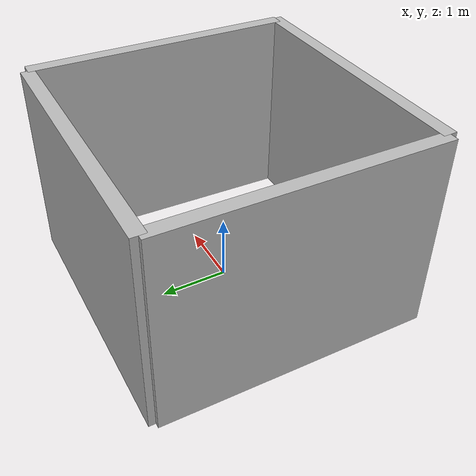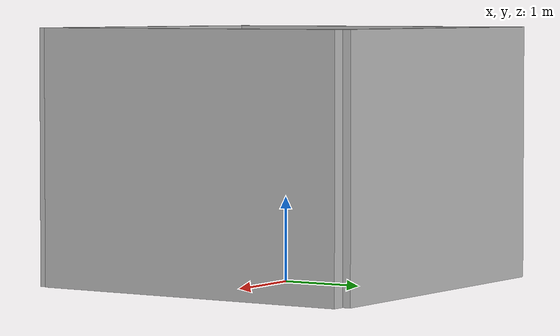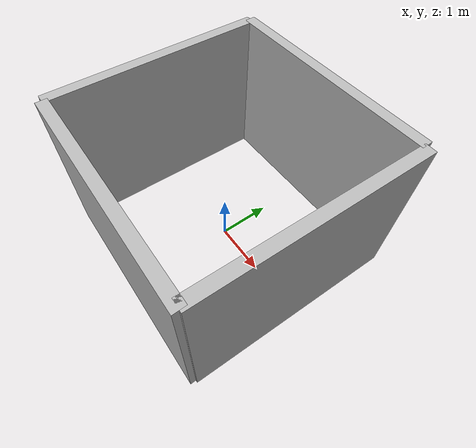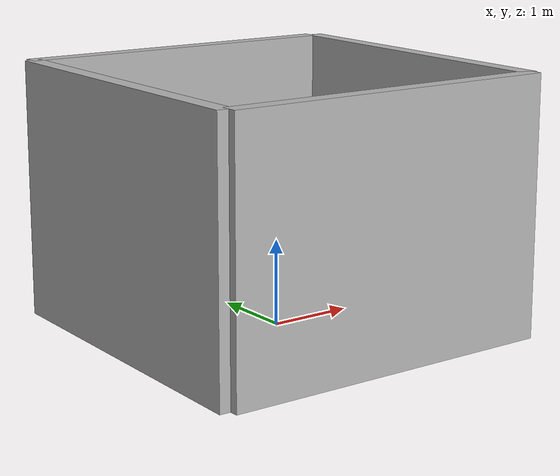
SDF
<?xml version="1.0" ?>
<sdf version="1.5">
  <model name="brick_box_3x1x3">
    <static>true</static>
    <link name=" Wall1">
      <pose>0 -2 1.5 0 0 0</pose>
      <collision name="collision">
        <geometry>
          <box>
            <size>4.0 0.2 3.0</size>
          </box>
        </geometry>
      </collision>
      <visual name="visual">
        <geometry>
          <mesh>
           <uri>model://my_Wall/meshes/simple_box.dae</uri>
            <scale>4.0 0.2 3.0</scale>
          </mesh>
        </geometry>
        <material>
          <script>
            <uri>model://my_Wall/materials/scripts</uri>
            <uri>model://my_Wall/materials/textures</uri>
            <name>BrickBox/Diffuse</name>
          </script>
        </material>
      </visual>
    </link>

<link name="Wall2">
      <pose>0 2 1.5 0 0 0</pose>
      <collision name="collision">
        <geometry>
          <box>
            <size>4.0 0.2 3.0</size>
          </box>
        </geometry>
      </collision>
      <visual name="visual">
        <geometry>
          <mesh>
           <uri>model://my_Wall/meshes/simple_box.dae</uri>
            <scale>4.0 0.2 3.0</scale>
          </mesh>
        </geometry>
        <material>
          <script>
            <uri>model://my_Wall/materials/scripts</uri>
            <uri>model://my_Wall/materials/textures</uri>
            <name>BrickBox/Diffuse</name>
          </script>
        </material>
      </visual>
    </link>

<link name="Wall3">
      <pose>-2 0 1.5 0 0 1.5565</pose>
      <collision name="collision">
        <geometry>
          <box>
            <size>4.0 0.2 3.0</size>
          </box>
        </geometry>
      </collision>
      <visual name="visual">
        <geometry>
          <mesh>
           <uri>model://my_Wall/meshes/simple_box.dae</uri>
            <scale>4.0 0.2 3.0</scale>
          </mesh>
        </geometry>
        <material>
          <script>
            <uri>model://my_Wall/materials/scripts</uri>
            <uri>model://my_Wall/materials/textures</uri>
            <name>BrickBox/Diffuse</name>
          </script>
        </material>
      </visual>
    </link>

<link name="Wall4">
      <pose>2 0 1.5 0 0 1.540726</pose>
      <collision name="collision">
        <geometry>
          <box>
            <size>4.0 0.2 3.0</size>
          </box>
        </geometry>
      </collision>
      <visual name="visual">
        <geometry>
          <mesh>
           <uri>model://my_Wall/meshes/simple_box.dae</uri>
            <scale>4.0 0.2 3.0</scale>
          </mesh>
        </geometry>
        <material>
          <script>
            <uri>model://my_Wall/materials/scripts</uri>
            <uri>model://my_Wall/materials/textures</uri>
            <name>BrickBox/Diffuse</name>
          </script>
        </material>
      </visual>
    </link>

  </model>
</sdf>
